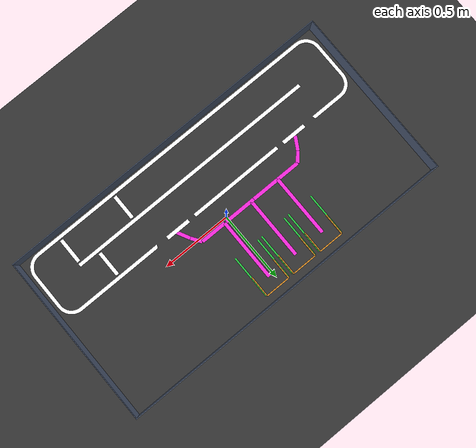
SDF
<?xml version="1.0"?>
<sdf version="1.6">
  <world name="map_world_261026">
    <plugin filename="gz-sim-physics-system" name="gz::sim::systems::Physics">
      <engine><filename>gz-physics-dartsim-plugin</filename></engine>
    </plugin>
    <plugin filename="gz-sim-user-commands-system" name="gz::sim::systems::UserCommands"/>
    <plugin filename="gz-sim-scene-broadcaster-system" name="gz::sim::systems::SceneBroadcaster"/>
    <plugin filename="gz-sim-sensors-system" name="gz::sim::systems::Sensors">
      <render_engine>ogre2</render_engine>
    </plugin>
    <plugin filename="gz-sim-imu-system" name="gz::sim::systems::Imu"/>

    <light type="directional" name="sun">
      <cast_shadows>false</cast_shadows>
      <pose>0 0 10 0 0 0</pose>
      <diffuse>0.9 0.9 0.9 1</diffuse>
      <specular>0.2 0.2 0.2 1</specular>
      <direction>-0.4 0.2 -0.9</direction>
    </light>

    <model name="ground_plane">
      <static>true</static>
      <link name="link">
        <collision name="collision">
          <geometry><plane><normal>0 0 1</normal><size>5 5</size></plane></geometry>
        </collision>
        <visual name="visual">
          <geometry><plane><normal>0 0 1</normal><size>5 5</size></plane></geometry>
          <material><ambient>0.2 0.2 0.2 1</ambient><diffuse>0.2 0.2 0.2 1</diffuse></material>
        </visual>
      </link>
    </model>

    <model name="road_lines_loop">
      <static>true</static>
      <pose>0 0 0.001 0 0 0</pose>
      <link name="link">
        <visual name="paint">
          <geometry><mesh><uri>model://control/map/map_world_261026/meshes/road_lines_loop.stl</uri></mesh></geometry>
          <material><ambient>1 1 1 1</ambient><diffuse>1 1 1 1</diffuse></material>
        </visual>
      </link>
    </model>

    <model name="pink_guide">
      <static>true</static>
      <pose>0 0 0 0 0 0</pose>
      <link name="link">
        <visual name="guide_00">
          <pose>0.2875 -0.0875 0.0015 0 0 2.039139</pose>
          <geometry><plane><normal>0 0 1</normal><size>0.0953 0.0250</size></plane></geometry>
          <material><ambient>0.95 0.15 0.85 1</ambient><diffuse>0.95 0.15 0.85 1</diffuse></material>
        </visual>
        <visual name="guide_01">
          <pose>0.2430 -0.0115 0.0015 0 0 2.172450</pose>
          <geometry><plane><normal>0 0 1</normal><size>0.0813 0.0250</size></plane></geometry>
          <material><ambient>0.95 0.15 0.85 1</ambient><diffuse>0.95 0.15 0.85 1</diffuse></material>
        </visual>
        <visual name="guide_02">
          <pose>0.1260 0.0220 0.0015 0 0 3.141593</pose>
          <geometry><plane><normal>0 0 1</normal><size>0.1880 0.0250</size></plane></geometry>
          <material><ambient>0.95 0.15 0.85 1</ambient><diffuse>0.95 0.15 0.85 1</diffuse></material>
        </visual>
        <visual name="guide_03">
          <pose>-0.0955 0.0220 0.0015 0 0 3.141593</pose>
          <geometry><plane><normal>0 0 1</normal><size>0.2330 0.0250</size></plane></geometry>
          <material><ambient>0.95 0.15 0.85 1</ambient><diffuse>0.95 0.15 0.85 1</diffuse></material>
        </visual>
        <visual name="guide_04">
          <pose>-0.3230 0.0220 0.0015 0 0 3.141593</pose>
          <geometry><plane><normal>0 0 1</normal><size>0.2220 0.0250</size></plane></geometry>
          <material><ambient>0.95 0.15 0.85 1</ambient><diffuse>0.95 0.15 0.85 1</diffuse></material>
        </visual>
        <visual name="guide_05">
          <pose>-0.4985 0.0220 0.0015 0 0 3.141593</pose>
          <geometry><plane><normal>0 0 1</normal><size>0.1690 0.0250</size></plane></geometry>
          <material><ambient>0.95 0.15 0.85 1</ambient><diffuse>0.95 0.15 0.85 1</diffuse></material>
        </visual>
        <visual name="guide_06">
          <pose>-0.6100 -0.0085 0.0015 0 0 -2.295400</pose>
          <geometry><plane><normal>0 0 1</normal><size>0.0815 0.0250</size></plane></geometry>
          <material><ambient>0.95 0.15 0.85 1</ambient><diffuse>0.95 0.15 0.85 1</diffuse></material>
        </visual>
        <visual name="guide_07">
          <pose>-0.6620 -0.0825 0.0015 0 0 -2.092415</pose>
          <geometry><plane><normal>0 0 1</normal><size>0.1003 0.0250</size></plane></geometry>
          <material><ambient>0.95 0.15 0.85 1</ambient><diffuse>0.95 0.15 0.85 1</diffuse></material>
        </visual>
        <visual name="bay_1_line">
          <pose>-0.4140 0.2460 0.0015 0 0 1.570796</pose>
          <geometry><plane><normal>0 0 1</normal><size>0.4480 0.0250</size></plane></geometry>
          <material><ambient>0.95 0.15 0.85 1</ambient><diffuse>0.95 0.15 0.85 1</diffuse></material>
        </visual>
        <visual name="bay_2_line">
          <pose>-0.1900 0.2460 0.0015 0 0 1.570796</pose>
          <geometry><plane><normal>0 0 1</normal><size>0.4480 0.0250</size></plane></geometry>
          <material><ambient>0.95 0.15 0.85 1</ambient><diffuse>0.95 0.15 0.85 1</diffuse></material>
        </visual>
        <visual name="bay_3_line">
          <pose>0.0320 0.2460 0.0015 0 0 1.570796</pose>
          <geometry><plane><normal>0 0 1</normal><size>0.4480 0.0250</size></plane></geometry>
          <material><ambient>0.95 0.15 0.85 1</ambient><diffuse>0.95 0.15 0.85 1</diffuse></material>
        </visual>
      </link>
    </model>

    <model name="bay_guide_1">
      <static>true</static>
      <pose>-0.4140 0 0 0 0 0</pose>
      <link name="link">
        <collision name="rail_left_col">
          <pose>-0.0900 0.4775 0.0075 0 0 0</pose>
          <geometry><box><size>0.0080 0.1550 0.0150</size></box></geometry>
          <surface><friction><ode><mu>0.3</mu><mu2>0.3</mu2></ode></friction></surface>
        </collision>
        <visual name="rail_left_vis">
          <pose>-0.0900 0.4775 0.0075 0 0 0</pose>
          <geometry><box><size>0.0080 0.1550 0.0150</size></box></geometry>
          <material><ambient>0.85 0.55 0.15 1</ambient><diffuse>0.85 0.55 0.15 1</diffuse></material>
        </visual>
        <collision name="rail_right_col">
          <pose>0.0900 0.4775 0.0075 0 0 0</pose>
          <geometry><box><size>0.0080 0.1550 0.0150</size></box></geometry>
          <surface><friction><ode><mu>0.3</mu><mu2>0.3</mu2></ode></friction></surface>
        </collision>
        <visual name="rail_right_vis">
          <pose>0.0900 0.4775 0.0075 0 0 0</pose>
          <geometry><box><size>0.0080 0.1550 0.0150</size></box></geometry>
          <material><ambient>0.85 0.55 0.15 1</ambient><diffuse>0.85 0.55 0.15 1</diffuse></material>
        </visual>
        <collision name="stop_bar_col">
          <pose>0.0000 0.5550 0.0075 0 0 0</pose>
          <geometry><box><size>0.1800 0.0080 0.0150</size></box></geometry>
          <surface><friction><ode><mu>0.3</mu><mu2>0.3</mu2></ode></friction></surface>
        </collision>
        <visual name="stop_bar_vis">
          <pose>0.0000 0.5550 0.0075 0 0 0</pose>
          <geometry><box><size>0.1800 0.0080 0.0150</size></box></geometry>
          <material><ambient>0.85 0.55 0.15 1</ambient><diffuse>0.85 0.55 0.15 1</diffuse></material>
        </visual>
        <visual name="border_left">
          <pose>-0.0940 0.3950 0.0012 0 0 1.570796</pose>
          <geometry><plane><normal>0 0 1</normal><size>0.3100 0.0120</size></plane></geometry>
          <material><ambient>0.15 0.75 0.25 1</ambient><diffuse>0.15 0.75 0.25 1</diffuse></material>
        </visual>
        <visual name="border_right">
          <pose>0.0940 0.3950 0.0012 0 0 1.570796</pose>
          <geometry><plane><normal>0 0 1</normal><size>0.3100 0.0120</size></plane></geometry>
          <material><ambient>0.15 0.75 0.25 1</ambient><diffuse>0.15 0.75 0.25 1</diffuse></material>
        </visual>
      </link>
    </model>

    <model name="bay_guide_2">
      <static>true</static>
      <pose>-0.1900 0 0 0 0 0</pose>
      <link name="link">
        <collision name="rail_left_col">
          <pose>-0.0900 0.4775 0.0075 0 0 0</pose>
          <geometry><box><size>0.0080 0.1550 0.0150</size></box></geometry>
          <surface><friction><ode><mu>0.3</mu><mu2>0.3</mu2></ode></friction></surface>
        </collision>
        <visual name="rail_left_vis">
          <pose>-0.0900 0.4775 0.0075 0 0 0</pose>
          <geometry><box><size>0.0080 0.1550 0.0150</size></box></geometry>
          <material><ambient>0.85 0.55 0.15 1</ambient><diffuse>0.85 0.55 0.15 1</diffuse></material>
        </visual>
        <collision name="rail_right_col">
          <pose>0.0900 0.4775 0.0075 0 0 0</pose>
          <geometry><box><size>0.0080 0.1550 0.0150</size></box></geometry>
          <surface><friction><ode><mu>0.3</mu><mu2>0.3</mu2></ode></friction></surface>
        </collision>
        <visual name="rail_right_vis">
          <pose>0.0900 0.4775 0.0075 0 0 0</pose>
          <geometry><box><size>0.0080 0.1550 0.0150</size></box></geometry>
          <material><ambient>0.85 0.55 0.15 1</ambient><diffuse>0.85 0.55 0.15 1</diffuse></material>
        </visual>
        <collision name="stop_bar_col">
          <pose>0.0000 0.5550 0.0075 0 0 0</pose>
          <geometry><box><size>0.1800 0.0080 0.0150</size></box></geometry>
          <surface><friction><ode><mu>0.3</mu><mu2>0.3</mu2></ode></friction></surface>
        </collision>
        <visual name="stop_bar_vis">
          <pose>0.0000 0.5550 0.0075 0 0 0</pose>
          <geometry><box><size>0.1800 0.0080 0.0150</size></box></geometry>
          <material><ambient>0.85 0.55 0.15 1</ambient><diffuse>0.85 0.55 0.15 1</diffuse></material>
        </visual>
        <visual name="border_left">
          <pose>-0.0940 0.3950 0.0012 0 0 1.570796</pose>
          <geometry><plane><normal>0 0 1</normal><size>0.3100 0.0120</size></plane></geometry>
          <material><ambient>0.15 0.75 0.25 1</ambient><diffuse>0.15 0.75 0.25 1</diffuse></material>
        </visual>
        <visual name="border_right">
          <pose>0.0940 0.3950 0.0012 0 0 1.570796</pose>
          <geometry><plane><normal>0 0 1</normal><size>0.3100 0.0120</size></plane></geometry>
          <material><ambient>0.15 0.75 0.25 1</ambient><diffuse>0.15 0.75 0.25 1</diffuse></material>
        </visual>
      </link>
    </model>

    <model name="bay_guide_3">
      <static>true</static>
      <pose>0.0320 0 0 0 0 0</pose>
      <link name="link">
        <collision name="rail_left_col">
          <pose>-0.0900 0.4775 0.0075 0 0 0</pose>
          <geometry><box><size>0.0080 0.1550 0.0150</size></box></geometry>
          <surface><friction><ode><mu>0.3</mu><mu2>0.3</mu2></ode></friction></surface>
        </collision>
        <visual name="rail_left_vis">
          <pose>-0.0900 0.4775 0.0075 0 0 0</pose>
          <geometry><box><size>0.0080 0.1550 0.0150</size></box></geometry>
          <material><ambient>0.85 0.55 0.15 1</ambient><diffuse>0.85 0.55 0.15 1</diffuse></material>
        </visual>
        <collision name="rail_right_col">
          <pose>0.0900 0.4775 0.0075 0 0 0</pose>
          <geometry><box><size>0.0080 0.1550 0.0150</size></box></geometry>
          <surface><friction><ode><mu>0.3</mu><mu2>0.3</mu2></ode></friction></surface>
        </collision>
        <visual name="rail_right_vis">
          <pose>0.0900 0.4775 0.0075 0 0 0</pose>
          <geometry><box><size>0.0080 0.1550 0.0150</size></box></geometry>
          <material><ambient>0.85 0.55 0.15 1</ambient><diffuse>0.85 0.55 0.15 1</diffuse></material>
        </visual>
        <collision name="stop_bar_col">
          <pose>0.0000 0.5550 0.0075 0 0 0</pose>
          <geometry><box><size>0.1800 0.0080 0.0150</size></box></geometry>
          <surface><friction><ode><mu>0.3</mu><mu2>0.3</mu2></ode></friction></surface>
        </collision>
        <visual name="stop_bar_vis">
          <pose>0.0000 0.5550 0.0075 0 0 0</pose>
          <geometry><box><size>0.1800 0.0080 0.0150</size></box></geometry>
          <material><ambient>0.85 0.55 0.15 1</ambient><diffuse>0.85 0.55 0.15 1</diffuse></material>
        </visual>
        <visual name="border_left">
          <pose>-0.0940 0.3950 0.0012 0 0 1.570796</pose>
          <geometry><plane><normal>0 0 1</normal><size>0.3100 0.0120</size></plane></geometry>
          <material><ambient>0.15 0.75 0.25 1</ambient><diffuse>0.15 0.75 0.25 1</diffuse></material>
        </visual>
        <visual name="border_right">
          <pose>0.0940 0.3950 0.0012 0 0 1.570796</pose>
          <geometry><plane><normal>0 0 1</normal><size>0.3100 0.0120</size></plane></geometry>
          <material><ambient>0.15 0.75 0.25 1</ambient><diffuse>0.15 0.75 0.25 1</diffuse></material>
        </visual>
      </link>
    </model>

    <model name="track_261026">
      <static>true</static>
      <pose>0 0 0 0 0 0</pose>
      <link name="link">
        <collision name="wall_00_col">
          <pose>0.0000 0.6125 0.0775 0 0 0</pose>
          <geometry><box><size>2.4500 0.0050 0.1550</size></box></geometry>
          <surface><friction><ode><mu>0.9</mu><mu2>0.9</mu2></ode></friction></surface>
        </collision>
        <visual name="wall_00_vis">
          <pose>0.0000 0.6125 0.0775 0 0 0</pose>
          <geometry><box><size>2.4500 0.0050 0.1550</size></box></geometry>
          <material><ambient>0.30 0.35 0.45 1</ambient><diffuse>0.30 0.35 0.45 1</diffuse></material>
        </visual>
        <collision name="wall_01_col">
          <pose>0.0000 -0.6125 0.0775 0 0 0</pose>
          <geometry><box><size>2.4500 0.0050 0.1550</size></box></geometry>
          <surface><friction><ode><mu>0.9</mu><mu2>0.9</mu2></ode></friction></surface>
        </collision>
        <visual name="wall_01_vis">
          <pose>0.0000 -0.6125 0.0775 0 0 0</pose>
          <geometry><box><size>2.4500 0.0050 0.1550</size></box></geometry>
          <material><ambient>0.30 0.35 0.45 1</ambient><diffuse>0.30 0.35 0.45 1</diffuse></material>
        </visual>
        <collision name="wall_02_col">
          <pose>1.2225 0.0000 0.0775 0 0 0</pose>
          <geometry><box><size>0.0050 1.2200 0.1550</size></box></geometry>
          <surface><friction><ode><mu>0.9</mu><mu2>0.9</mu2></ode></friction></surface>
        </collision>
        <visual name="wall_02_vis">
          <pose>1.2225 0.0000 0.0775 0 0 0</pose>
          <geometry><box><size>0.0050 1.2200 0.1550</size></box></geometry>
          <material><ambient>0.30 0.35 0.45 1</ambient><diffuse>0.30 0.35 0.45 1</diffuse></material>
        </visual>
        <collision name="wall_03_col">
          <pose>-1.2225 0.0000 0.0775 0 0 0</pose>
          <geometry><box><size>0.0050 1.2200 0.1550</size></box></geometry>
          <surface><friction><ode><mu>0.9</mu><mu2>0.9</mu2></ode></friction></surface>
        </collision>
        <visual name="wall_03_vis">
          <pose>-1.2225 0.0000 0.0775 0 0 0</pose>
          <geometry><box><size>0.0050 1.2200 0.1550</size></box></geometry>
          <material><ambient>0.30 0.35 0.45 1</ambient><diffuse>0.30 0.35 0.45 1</diffuse></material>
        </visual>
      </link>
    </model>
  </world>
</sdf>
